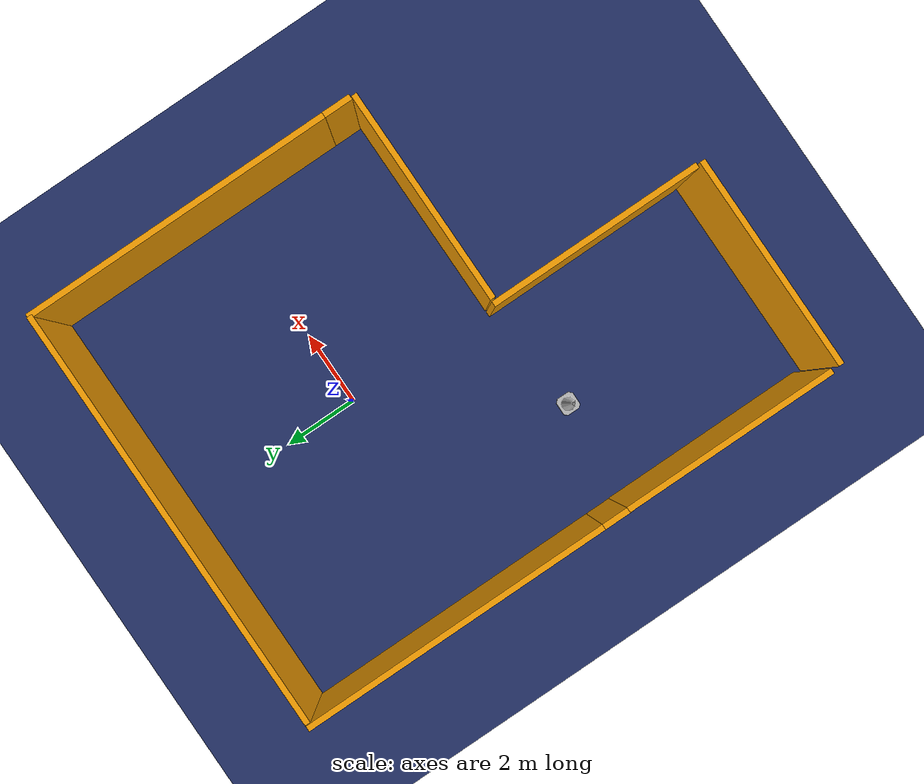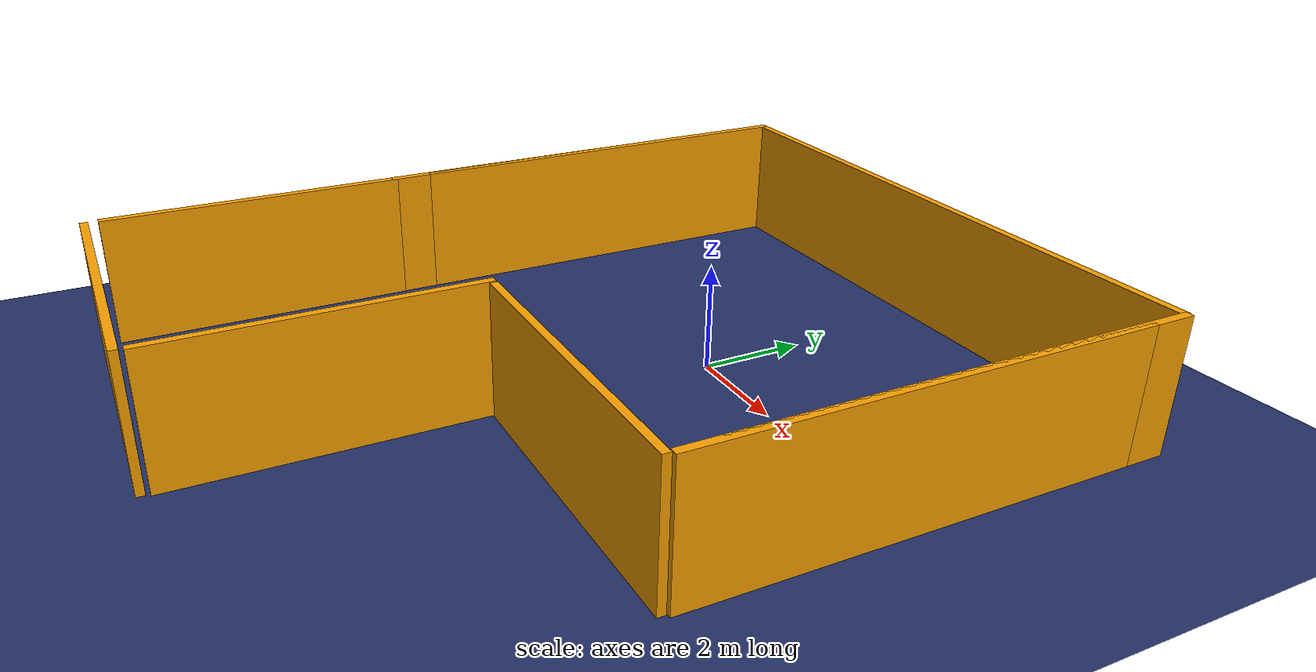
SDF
<sdf version='1.9'>
  <world name='default'>
    <physics name='1ms' type='ignored'>
      <max_step_size>0.001</max_step_size>
      <real_time_factor>1</real_time_factor>
      <real_time_update_rate>1000</real_time_update_rate>
    </physics>
    <plugin name='ignition::gazebo::systems::Physics' filename='ignition-gazebo-physics-system'/>
    <plugin name='ignition::gazebo::systems::UserCommands' filename='ignition-gazebo-user-commands-system'/>
    <plugin name='ignition::gazebo::systems::SceneBroadcaster' filename='ignition-gazebo-scene-broadcaster-system'/>
    <plugin name='ignition::gazebo::systems::Contact' filename='ignition-gazebo-contact-system'/>
    <gravity>0 0 -9.8</gravity>
    <magnetic_field>6e-06 2.3e-05 -4.2e-05</magnetic_field>
    <atmosphere type='adiabatic'/>
    <scene>
      <ambient>0.4 0.4 0.4 1</ambient>
      <background>0.7 0.7 0.7 1</background>
      <shadows>true</shadows>
    </scene>
    <audio>
      <device>default</device>
    </audio>
    <model name='ground_plane'>
      <static>true</static>
      <link name='link'>
        <collision name='collision'>
          <geometry>
            <plane>
              <normal>0 0 1</normal>
              <size>100 100</size>
            </plane>
          </geometry>
          <surface>
            <friction>
              <ode/>
            </friction>
            <bounce/>
            <contact/>
          </surface>
        </collision>
        <visual name='visual'>
          <geometry>
            <plane>
              <normal>0 0 1</normal>
              <size>100 100</size>
            </plane>
          </geometry>
          <material>
            <ambient>0.133 0.188 0.4 1</ambient>
            <diffuse>0.133 0.188 0.4 1</diffuse>
            <specular>0.133 0.188 0.4 1</specular>
          </material>
        </visual>
        <pose>0 0 0 0 -0 0</pose>
        <inertial>
          <pose>0 0 0 0 -0 0</pose>
          <mass>1</mass>
          <inertia>
            <ixx>1</ixx>
            <ixy>0</ixy>
            <ixz>0</ixz>
            <iyy>1</iyy>
            <iyz>0</iyz>
            <izz>1</izz>
          </inertia>
        </inertial>
        <enable_wind>false</enable_wind>
      </link>
      <pose>0 0 0 0 -0 0</pose>
      <self_collide>false</self_collide>
    </model>
    <model name='office_env_w2'>
      <pose>0 4.95791 1.25 0 -0 0</pose>
      <link name='Wall_10'>
        <pose>0 0 0 0 -0 0</pose>
        <visual name='Wall_10_Visual_0'>
          <pose>0 0 0 0 -0 0</pose>
          <geometry>
            <box>
              <size>11.466 0.15 2.5</size>
            </box>
          </geometry>
          <material>
               <ambient>0.961 0.62 0 1</ambient>
              <diffuse>0.961 0.62 0 1</diffuse>
             <specular>0.961 0.62 0 1</specular>

          </material>
          <meta>
            <layer>0</layer>
          </meta>
        </visual>
        <collision name='Wall_10_Collision_0'>
          <geometry>
            <box>
              <size>11.466 0.15 2.5</size>
            </box>
          </geometry>
          <pose>0 0 0 0 -0 0</pose>
          <max_contacts>10</max_contacts>
          <surface>
            <contact>
              <ode/>
            </contact>
            <bounce/>
            <friction>
              <torsional>
                <ode/>
              </torsional>
              <ode/>
            </friction>
          </surface>
        </collision>
        <self_collide>false</self_collide>
        <enable_wind>false</enable_wind>
        <kinematic>false</kinematic>
        <inertial>
          <pose>0 0 0 0 -0 0</pose>
          <mass>1</mass>
          <inertia>
            <ixx>1</ixx>
            <ixy>0</ixy>
            <ixz>0</ixz>
            <iyy>1</iyy>
            <iyz>0</iyz>
            <izz>1</izz>
          </inertia>
        </inertial>
      </link>
      <static>true</static>
      <self_collide>false</self_collide>
    </model>
    <model name='office_env_w'>
      <pose>5.73367 0.847832 1.25 0 -0 1.57</pose>
      <link name='Wall_10'>
        <pose>0 0 0 0 -0 0</pose>
        <visual name='Wall_10_Visual_0'>
          <pose>0 0 0 0 -0 0</pose>
          <geometry>
            <box>
              <size>8.324 0.15 2.5</size>
            </box>
          </geometry>
          <material>
               <ambient>0.961 0.62 0 1</ambient>
              <diffuse>0.961 0.62 0 1</diffuse>
             <specular>0.961 0.62 0 1</specular>

          </material>
          <meta>
            <layer>0</layer>
          </meta>
        </visual>
        <collision name='Wall_10_Collision_0'>
          <geometry>
            <box>
              <size>8.324 0.15 2.5</size>
            </box>
          </geometry>
          <pose>0 0 0 0 -0 0</pose>
          <max_contacts>10</max_contacts>
          <surface>
            <contact>
              <ode/>
            </contact>
            <bounce/>
            <friction>
              <torsional>
                <ode/>
              </torsional>
              <ode/>
            </friction>
          </surface>
        </collision>
        <self_collide>false</self_collide>
        <enable_wind>false</enable_wind>
        <kinematic>false</kinematic>
        <inertial>
          <pose>0 0 0 0 -0 0</pose>
          <mass>1</mass>
          <inertia>
            <ixx>1</ixx>
            <ixy>0</ixy>
            <ixz>0</ixz>
            <iyy>1</iyy>
            <iyz>0</iyz>
            <izz>1</izz>
          </inertia>
        </inertial>
      </link>
      <static>true</static>
      <self_collide>false</self_collide>
    </model>
    <model name='office_env_w3'>
      <pose>2.8655 -4.162 1.25 0 -0 0</pose>
      <link name='Wall_10'>
        <pose>0 0 0 0 -0 0</pose>
        <visual name='Wall_10_Visual_0'>
          <pose>0 0 0 0 -0 0</pose>
          <geometry>
            <box>
              <size>5.733 0.15 2.5</size>
            </box>
          </geometry>
          <material>
               <ambient>0.961 0.62 0 1</ambient>
              <diffuse>0.961 0.62 0 1</diffuse>
             <specular>0.961 0.62 0 1</specular>

          </material>
          <meta>
            <layer>0</layer>
          </meta>
        </visual>
        <collision name='Wall_10_Collision_0'>
          <geometry>
            <box>
              <size>5.733 0.15 2.5</size>
            </box>
          </geometry>
          <pose>0 0 0 0 -0 0</pose>
          <max_contacts>10</max_contacts>
          <surface>
            <contact>
              <ode/>
            </contact>
            <bounce/>
            <friction>
              <torsional>
                <ode/>
              </torsional>
              <ode/>
            </friction>
          </surface>
        </collision>
        <self_collide>false</self_collide>
        <enable_wind>false</enable_wind>
        <kinematic>false</kinematic>
        <inertial>
          <pose>0 0 0 0 -0 0</pose>
          <mass>1</mass>
          <inertia>
            <ixx>1</ixx>
            <ixy>0</ixy>
            <ixz>0</ixz>
            <iyy>1</iyy>
            <iyz>0</iyz>
            <izz>1</izz>
          </inertia>
        </inertial>
      </link>
      <static>true</static>
      <self_collide>false</self_collide>
    </model>
    <model name='office_env_w3_clone'>
      <pose>-0.116895 -6.96099 1.25 0 -0 1.57</pose>
      <link name='Wall_10'>
        <pose>0 0 0 0 -0 0</pose>
        <visual name='Wall_10_Visual_0'>
          <pose>0 0 0 0 -0 0</pose>
          <geometry>
            <box>
              <size>5.733 0.15 2.5</size>
            </box>
          </geometry>
          <material>
            <ambient>0.961 0.62 0 1</ambient>
            <diffuse>0.961 0.62 0 1</diffuse>
            <specular>0.961 0.62 0 1</specular>
          </material>
          <meta>
            <layer>0</layer>
          </meta>
        </visual>
        <collision name='Wall_10_Collision_0'>
          <geometry>
            <box>
              <size>5.733 0.15 2.5</size>
            </box>
          </geometry>
          <pose>0 0 0 0 -0 0</pose>
          <max_contacts>10</max_contacts>
          <surface>
            <contact>
              <ode/>
            </contact>
            <bounce/>
            <friction>
              <torsional>
                <ode/>
              </torsional>
              <ode/>
            </friction>
          </surface>
        </collision>
        <self_collide>false</self_collide>
        <enable_wind>false</enable_wind>
        <kinematic>false</kinematic>
        <inertial>
          <pose>0 0 0 0 -0 0</pose>
          <mass>1</mass>
          <inertia>
            <ixx>1</ixx>
            <ixy>0</ixy>
            <ixz>0</ixz>
            <iyy>1</iyy>
            <iyz>0</iyz>
            <izz>1</izz>
          </inertia>
        </inertial>
      </link>
      <static>true</static>
      <self_collide>false</self_collide>
    </model>
    <model name='office_env_w_clone'>
      <pose>-5.82885 0.866541 1.25 0 -0 1.57</pose>
      <link name='Wall_10'>
        <pose>0 0 0 0 -0 0</pose>
        <visual name='Wall_10_Visual_0'>
          <pose>0 0 0 0 -0 0</pose>
          <geometry>
            <box>
              <size>8.324 0.15 2.5</size>
            </box>
          </geometry>
          <material>
               <ambient>0.961 0.62 0 1</ambient>
              <diffuse>0.961 0.62 0 1</diffuse>
             <specular>0.961 0.62 0 1</specular>

          </material>
          <meta>
            <layer>0</layer>
          </meta>
        </visual>
        <collision name='Wall_10_Collision_0'>
          <geometry>
            <box>
              <size>8.324 0.15 2.5</size>
            </box>
          </geometry>
          <pose>0 0 0 0 -0 0</pose>
          <max_contacts>10</max_contacts>
          <surface>
            <contact>
              <ode/>
            </contact>
            <bounce/>
            <friction>
              <torsional>
                <ode/>
              </torsional>
              <ode/>
            </friction>
          </surface>
        </collision>
        <self_collide>false</self_collide>
        <enable_wind>false</enable_wind>
        <kinematic>false</kinematic>
        <inertial>
          <pose>0 0 0 0 -0 0</pose>
          <mass>1</mass>
          <inertia>
            <ixx>1</ixx>
            <ixy>0</ixy>
            <ixz>0</ixz>
            <iyy>1</iyy>
            <iyz>0</iyz>
            <izz>1</izz>
          </inertia>
        </inertial>
      </link>
      <static>true</static>
      <self_collide>false</self_collide>
    </model>
    <model name='office_env_w3_clone_clone'>
      <pose>-5.82695 -6.85682 1.25 0 -0 1.57</pose>
      <link name='Wall_10'>
        <pose>0 0 0 0 -0 0</pose>
        <visual name='Wall_10_Visual_0'>
          <pose>0 0 0 0 -0 0</pose>
          <geometry>
            <box>
              <size>5.733 0.15 2.5</size>
            </box>
          </geometry>
          <material>
               <ambient>0.961 0.62 0 1</ambient>
              <diffuse>0.961 0.62 0 1</diffuse>
             <specular>0.961 0.62 0 1</specular>

          </material>
          <meta>
            <layer>0</layer>
          </meta>
        </visual>
        <collision name='Wall_10_Collision_0'>
          <geometry>
            <box>
              <size>5.733 0.15 2.5</size>
            </box>
          </geometry>
          <pose>0 0 0 0 -0 0</pose>
          <max_contacts>10</max_contacts>
          <surface>
            <contact>
              <ode/>
            </contact>
            <bounce/>
            <friction>
              <torsional>
                <ode/>
              </torsional>
              <ode/>
            </friction>
          </surface>
        </collision>
        <self_collide>false</self_collide>
        <enable_wind>false</enable_wind>
        <kinematic>false</kinematic>
        <inertial>
          <pose>0 0 0 0 -0 0</pose>
          <mass>1</mass>
          <inertia>
            <ixx>1</ixx>
            <ixy>0</ixy>
            <ixz>0</ixz>
            <iyy>1</iyy>
            <iyz>0</iyz>
            <izz>1</izz>
          </inertia>
        </inertial>
      </link>
      <static>true</static>
      <self_collide>false</self_collide>
    </model>
    <model name='office_env_w3_clone_0'>
      <pose>-2.96341 -9.9742 1.25 0 -0 0</pose>
      <link name='Wall_10'>
        <pose>0 0 0 0 -0 0</pose>
        <visual name='Wall_10_Visual_0'>
          <pose>0 0 0 0 -0 0</pose>
          <geometry>
            <box>
              <size>5.733 0.15 2.5</size>
            </box>
          </geometry>
          <material>
               <ambient>0.961 0.62 0 1</ambient>
              <diffuse>0.961 0.62 0 1</diffuse>
             <specular>0.961 0.62 0 1</specular>

          </material>
          <meta>
            <layer>0</layer>
          </meta>
        </visual>
        <collision name='Wall_10_Collision_0'>
          <geometry>
            <box>
              <size>5.733 0.15 2.5</size>
            </box>
          </geometry>
          <pose>0 0 0 0 -0 0</pose>
          <max_contacts>10</max_contacts>
          <surface>
            <contact>
              <ode/>
            </contact>
            <bounce/>
            <friction>
              <torsional>
                <ode/>
              </torsional>
              <ode/>
            </friction>
          </surface>
        </collision>
        <self_collide>false</self_collide>
        <enable_wind>false</enable_wind>
        <kinematic>false</kinematic>
        <inertial>
          <pose>0 0 0 0 -0 0</pose>
          <mass>1</mass>
          <inertia>
            <ixx>1</ixx>
            <ixy>0</ixy>
            <ixz>0</ixz>
            <iyy>1</iyy>
            <iyz>0</iyz>
            <izz>1</izz>
          </inertia>
        </inertial>
      </link>
      <static>true</static>
      <self_collide>false</self_collide>
    </model>
    <model name='construction_cone'>
      <include>
            <uri>model://construction_cone</uri>
      </include>
      <pose>-3.16254 -4.5019 -0.000817 0 -0 0</pose>

    </model>

    <model name='office_env_w_1'>
      <pose>5.73307 0.08924 1.25 0 -0 1.57</pose>
      <link name='Wall_10'>
        <pose>0 0 0 0 -0 0</pose>
        <visual name='Wall_10_Visual_0'>
          <pose>0 0 0 0 -0 0</pose>
          <geometry>
            <box>
              <size>8.324 0.15 2.5</size>
            </box>
          </geometry>
          <material>
               <ambient>0.961 0.62 0 1</ambient>
              <diffuse>0.961 0.62 0 1</diffuse>
             <specular>0.961 0.62 0 1</specular>

          </material>
          <meta>
            <layer>0</layer>
          </meta>
        </visual>
        <collision name='Wall_10_Collision_0'>
          <geometry>
            <box>
              <size>8.324 0.15 2.5</size>
            </box>
          </geometry>
          <pose>0 0 0 0 -0 0</pose>
          <max_contacts>10</max_contacts>
          <surface>
            <contact>
              <ode/>
            </contact>
            <bounce/>
            <friction>
              <torsional>
                <ode/>
              </torsional>
              <ode/>
            </friction>
          </surface>
        </collision>
        <self_collide>false</self_collide>
        <enable_wind>false</enable_wind>
        <kinematic>false</kinematic>
        <inertial>
          <pose>0 0 0 0 -0 0</pose>
          <mass>1</mass>
          <inertia>
            <ixx>1</ixx>
            <ixy>0</ixy>
            <ixz>0</ixz>
            <iyy>1</iyy>
            <iyz>0</iyz>
            <izz>1</izz>
          </inertia>
        </inertial>
      </link>
      <static>true</static>
      <self_collide>false</self_collide>
    </model>
    <model name='office_env_w_clone_1'>
      <pose>-5.82948 0.079903 1.25 0 -0 1.57</pose>
      <link name='Wall_10'>
        <pose>0 0 0 0 -0 0</pose>
        <visual name='Wall_10_Visual_0'>
          <pose>0 0 0 0 -0 0</pose>
          <geometry>
            <box>
              <size>8.324 0.15 2.5</size>
            </box>
          </geometry>
          <material>
               <ambient>0.961 0.62 0 1</ambient>
              <diffuse>0.961 0.62 0 1</diffuse>
             <specular>0.961 0.62 0 1</specular>

          </material>
          <meta>
            <layer>0</layer>
          </meta>
        </visual>
        <collision name='Wall_10_Collision_0'>
          <geometry>
            <box>
              <size>8.324 0.15 2.5</size>
            </box>
          </geometry>
          <pose>0 0 0 0 -0 0</pose>
          <max_contacts>10</max_contacts>
          <surface>
            <contact>
              <ode/>
            </contact>
            <bounce/>
            <friction>
              <torsional>
                <ode/>
              </torsional>
              <ode/>
            </friction>
          </surface>
        </collision>
        <self_collide>false</self_collide>
        <enable_wind>false</enable_wind>
        <kinematic>false</kinematic>
        <inertial>
          <pose>0 0 0 0 -0 0</pose>
          <mass>1</mass>
          <inertia>
            <ixx>1</ixx>
            <ixy>0</ixy>
            <ixz>0</ixz>
            <iyy>1</iyy>
            <iyz>0</iyz>
            <izz>1</izz>
          </inertia>
        </inertial>
      </link>
      <static>true</static>
      <self_collide>false</self_collide>
    </model>

    <light name='sun' type='directional'>
      <pose>0 0 10 0 -0 0</pose>
      <cast_shadows>true</cast_shadows>
      <intensity>1</intensity>
      <direction>-0.5 0.5 -1</direction>
      <diffuse>0.8 0.8 0.8 1</diffuse>
      <specular>0.2 0.2 0.2 1</specular>
      <attenuation>
        <range>1000</range>
        <linear>0.01</linear>
        <constant>0.90000000000000002</constant>
        <quadratic>0.001</quadratic>
      </attenuation>
      <spot>
        <inner_angle>0</inner_angle>
        <outer_angle>0</outer_angle>
        <falloff>0</falloff>
      </spot>
    </light>
  </world>
</sdf>

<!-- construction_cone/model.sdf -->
<sdf version="1.6">
  <model name="construction_cone">
    <link name="link">
      <collision name="collision">
        <geometry>
          <mesh>
            <scale>1 1 1</scale>
            <uri>meshes/construction_cone.dae</uri>
          </mesh>
        </geometry>
      </collision>
      <visual name="visual">
        <geometry>
          <mesh>
            <scale>1 1 1</scale>
            <uri>meshes/construction_cone.dae</uri>
          </mesh>
        </geometry>
      </visual>
    </link>
  </model>
</sdf>
